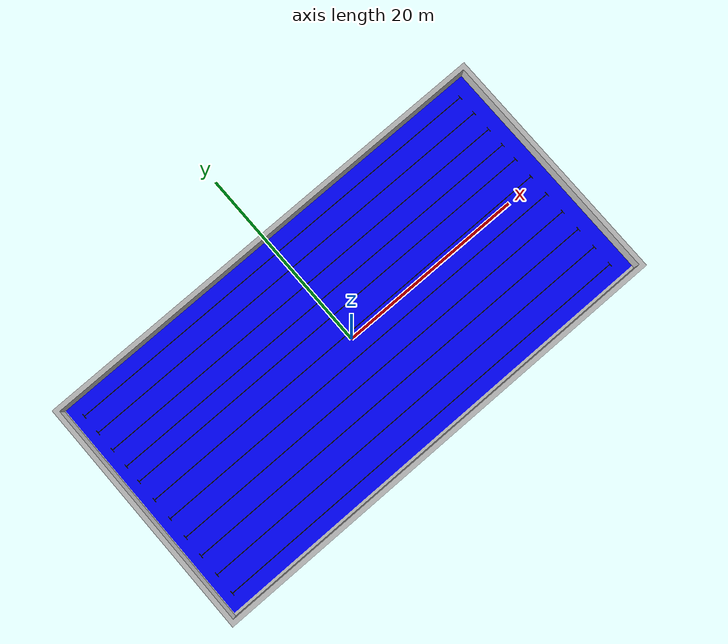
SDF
<?xml version='1.0'?>
<sdf version='1.6'>
  <model name='sauvc pool'>
    <link name='pool'>
      <gravity>0</gravity>
      <pose>0 0 0 0 0 0</pose>
      <collision name ='pool_collision'>
        <geometry>
          <mesh>
            <uri>model://sauvc pool/meshes/pool.dae</uri>
          </mesh>
        </geometry>
      </collision>
      <visual name='pool_visual'>
        <geometry>
          <mesh>
            <uri>model://sauvc pool/meshes/pool.dae</uri>
          </mesh>
        </geometry>
      </visual>
    </link>
    <static>true</static>
  </model>
</sdf>
